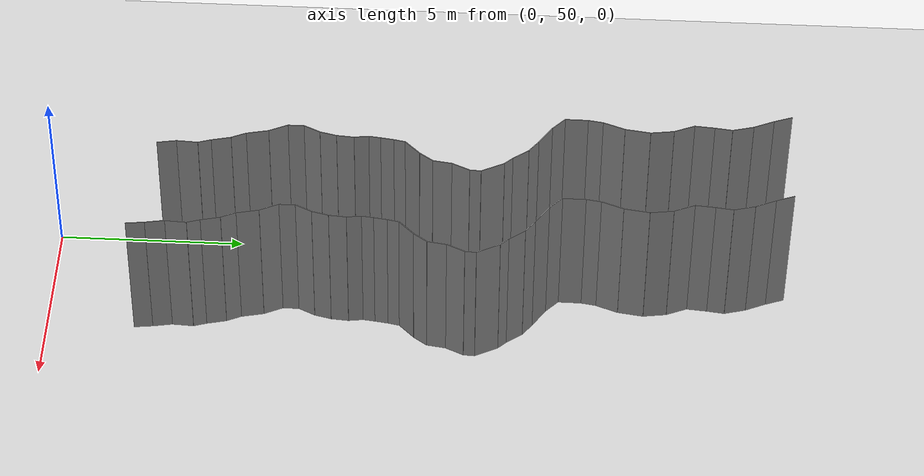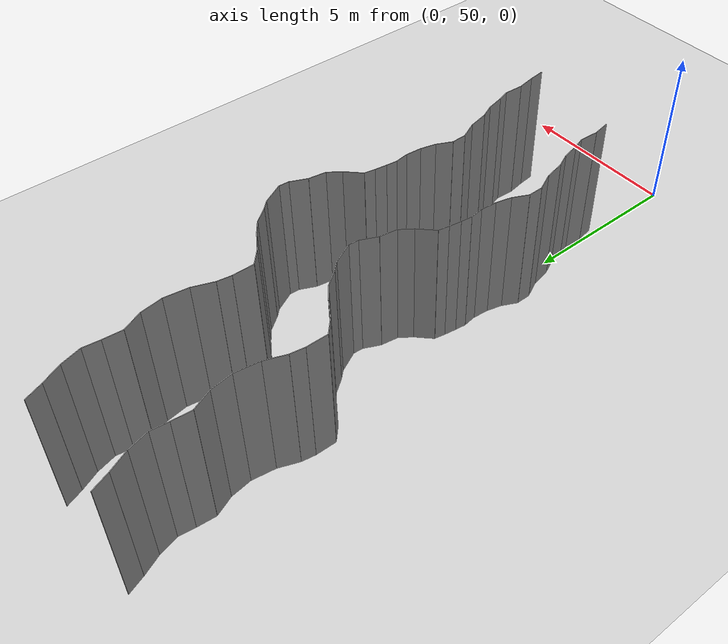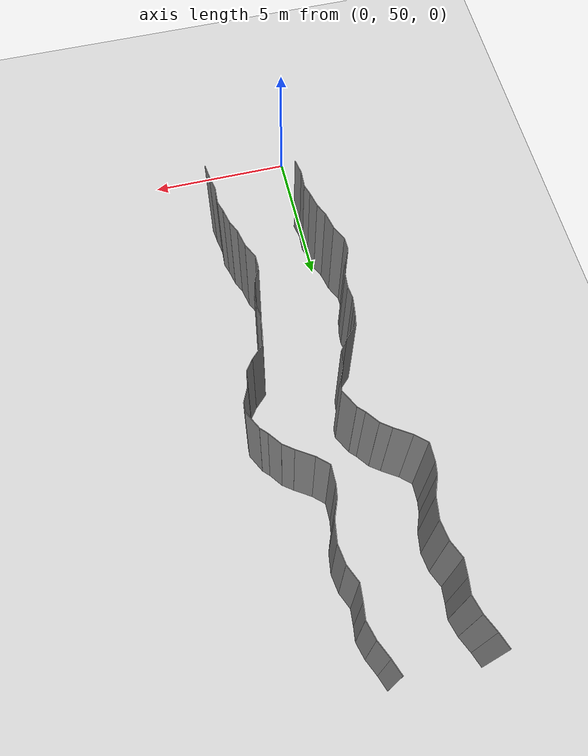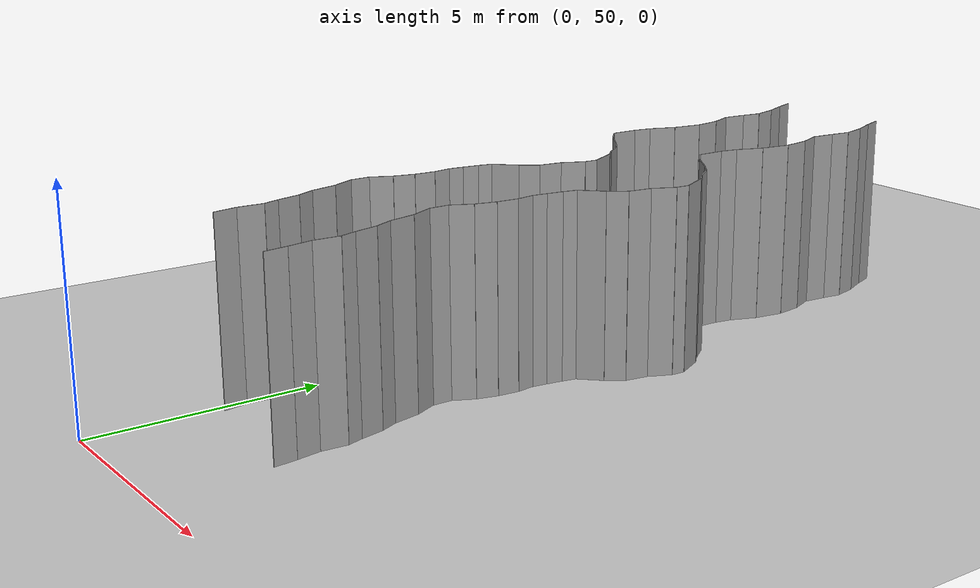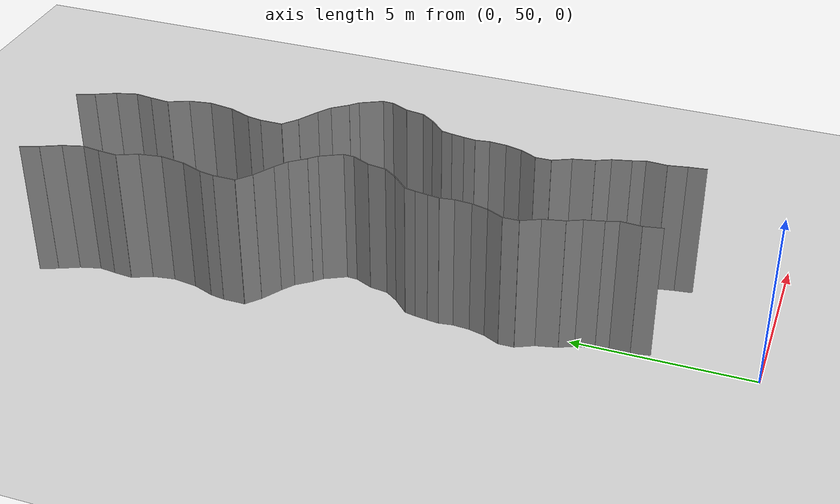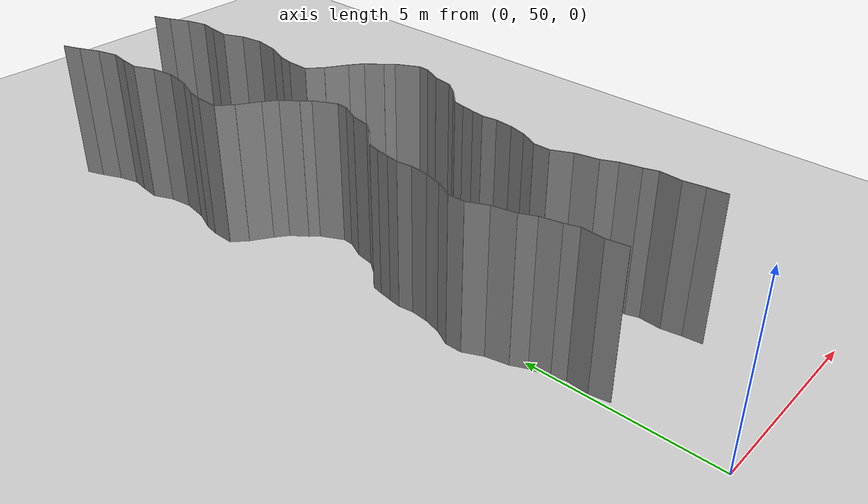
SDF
<sdf version="1.6">
 <world name="default">
  <model name="ground_plane">
   <static>1</static>
   <link name="link">
    <collision name="collision">
     <geometry><plane><normal>0 0 1</normal><size>200 200</size></plane></geometry>
     <surface><friction><ode><mu>100</mu><mu2>50</mu2></ode></friction></surface>
    </collision>
    <visual name="visual">
     <cast_shadows>0</cast_shadows>
     <geometry><plane><normal>0 0 1</normal><size>200 200</size></plane></geometry>
     <material>
      <script><uri>file://media/materials/scripts/gazebo.material</uri><name>Gazebo/Grey</name></script>
     </material>
    </visual>
   </link>
   <pose>0 100 0 0 -0 0</pose>
  </model>
  <model name="wall_225">
   <static>1</static>
   <pose>3.2113889457485594 52.61183467587801 2 0 0 0.12217053225427776</pose>
   <link name="link">
    <collision name="collision"><geometry><box><size>0.02 0.504055038883 4</size></box></geometry></collision>
    <visual name="visual">
     <material>
      <script><name>Gazebo/Grey</name><uri>file://media/materials/scripts/gazebo.material</uri></script>
     </material>
     <geometry><box><size>0.02 0.504055038883 4</size></box></geometry>
    </visual>
   </link>
  </model>
  <model name="wall_226">
   <static>1</static>
   <pose>0.13419193776074015 53.123349293908355 2 0 0 0.17600717748907255</pose>
   <link name="link">
    <collision name="collision"><geometry><box><size>0.02 0.530933757106 4</size></box></geometry></collision>
    <visual name="visual">
     <material>
      <script><name>Gazebo/Grey</name><uri>file://media/materials/scripts/gazebo.material</uri></script>
     </material>
     <geometry><box><size>0.02 0.530933757106 4</size></box></geometry>
    </visual>
   </link>
  </model>
  <model name="wall_227">
   <static>1</static>
   <pose>3.13419193776074 53.123349293908355 2 0 0 0.17600717748907255</pose>
   <link name="link">
    <collision name="collision"><geometry><box><size>0.02 0.530933757106 4</size></box></geometry></collision>
    <visual name="visual">
     <material>
      <script><name>Gazebo/Grey</name><uri>file://media/materials/scripts/gazebo.material</uri></script>
     </material>
     <geometry><box><size>0.02 0.530933757106 4</size></box></geometry>
    </visual>
   </link>
  </model>
  <model name="wall_228">
   <static>1</static>
   <pose>0.1033525726091985 53.67219844196228 2 0 0 -0.054362866140909724</pose>
   <link name="link">
    <collision name="collision"><geometry><box><size>0.02 0.575817757311 4</size></box></geometry></collision>
    <visual name="visual">
     <material>
      <script><name>Gazebo/Grey</name><uri>file://media/materials/scripts/gazebo.material</uri></script>
     </material>
     <geometry><box><size>0.02 0.575817757311 4</size></box></geometry>
    </visual>
   </link>
  </model>
  <model name="wall_229">
   <static>1</static>
   <pose>3.1033525726091984 53.67219844196228 2 0 0 -0.054362866140909724</pose>
   <link name="link">
    <collision name="collision"><geometry><box><size>0.02 0.575817757311 4</size></box></geometry></collision>
    <visual name="visual">
     <material>
      <script><name>Gazebo/Grey</name><uri>file://media/materials/scripts/gazebo.material</uri></script>
     </material>
     <geometry><box><size>0.02 0.575817757311 4</size></box></geometry>
    </visual>
   </link>
  </model>
  <model name="wall_230">
   <static>1</static>
   <pose>0.06323325551721799 54.133449293989024 2 0 0 0.3105255711628101</pose>
   <link name="link">
    <collision name="collision"><geometry><box><size>0.02 0.364990984715 4</size></box></geometry></collision>
    <visual name="visual">
     <material>
      <script><name>Gazebo/Grey</name><uri>file://media/materials/scripts/gazebo.material</uri></script>
     </material>
     <geometry><box><size>0.02 0.364990984715 4</size></box></geometry>
    </visual>
   </link>
  </model>
  <model name="wall_231">
   <static>1</static>
   <pose>3.063233255517218 54.133449293989024 2 0 0 0.3105255711628101</pose>
   <link name="link">
    <collision name="collision"><geometry><box><size>0.02 0.364990984715 4</size></box></geometry></collision>
    <visual name="visual">
     <material>
      <script><name>Gazebo/Grey</name><uri>file://media/materials/scripts/gazebo.material</uri></script>
     </material>
     <geometry><box><size>0.02 0.364990984715 4</size></box></geometry>
    </visual>
   </link>
  </model>
  <model name="wall_232">
   <static>1</static>
   <pose>-0.05407325870135795 54.56925608797085 2 0 0 0.23068202417243394</pose>
   <link name="link">
    <collision name="collision"><geometry><box><size>0.02 0.538339226283 4</size></box></geometry></collision>
    <visual name="visual">
     <material>
      <script><name>Gazebo/Grey</name><uri>file://media/materials/scripts/gazebo.material</uri></script>
     </material>
     <geometry><box><size>0.02 0.538339226283 4</size></box></geometry>
    </visual>
   </link>
  </model>
  <model name="wall_233">
   <static>1</static>
   <pose>2.945926741298642 54.56925608797085 2 0 0 0.23068202417243394</pose>
   <link name="link">
    <collision name="collision"><geometry><box><size>0.02 0.538339226283 4</size></box></geometry></collision>
    <visual name="visual">
     <material>
      <script><name>Gazebo/Grey</name><uri>file://media/materials/scripts/gazebo.material</uri></script>
     </material>
     <geometry><box><size>0.02 0.538339226283 4</size></box></geometry>
    </visual>
   </link>
  </model>
  <model name="wall_234">
   <static>1</static>
   <pose>-0.20672745649517255 55.026170337713495 2 0 0 0.4373402873501568</pose>
   <link name="link">
    <collision name="collision"><geometry><box><size>0.02 0.430243449625 4</size></box></geometry></collision>
    <visual name="visual">
     <material>
      <script><name>Gazebo/Grey</name><uri>file://media/materials/scripts/gazebo.material</uri></script>
     </material>
     <geometry><box><size>0.02 0.430243449625 4</size></box></geometry>
    </visual>
   </link>
  </model>
  <model name="wall_235">
   <static>1</static>
   <pose>2.7932725435048273 55.026170337713495 2 0 0 0.4373402873501568</pose>
   <link name="link">
    <collision name="collision"><geometry><box><size>0.02 0.430243449625 4</size></box></geometry></collision>
    <visual name="visual">
     <material>
      <script><name>Gazebo/Grey</name><uri>file://media/materials/scripts/gazebo.material</uri></script>
     </material>
     <geometry><box><size>0.02 0.430243449625 4</size></box></geometry>
    </visual>
   </link>
  </model>
  <model name="wall_236">
   <static>1</static>
   <pose>-0.3642991000817114 55.51969628307534 2 0 0 0.21896844214872932</pose>
   <link name="link">
    <collision name="collision"><geometry><box><size>0.02 0.6119136238 4</size></box></geometry></collision>
    <visual name="visual">
     <material>
      <script><name>Gazebo/Grey</name><uri>file://media/materials/scripts/gazebo.material</uri></script>
     </material>
     <geometry><box><size>0.02 0.6119136238 4</size></box></geometry>
    </visual>
   </link>
  </model>
  <model name="wall_237">
   <static>1</static>
   <pose>2.6357008999182887 55.51969628307534 2 0 0 0.21896844214872932</pose>
   <link name="link">
    <collision name="collision"><geometry><box><size>0.02 0.6119136238 4</size></box></geometry></collision>
    <visual name="visual">
     <material>
      <script><name>Gazebo/Grey</name><uri>file://media/materials/scripts/gazebo.material</uri></script>
     </material>
     <geometry><box><size>0.02 0.6119136238 4</size></box></geometry>
    </visual>
   </link>
  </model>
  <model name="wall_238">
   <static>1</static>
   <pose>-0.5504548928587892 56.06775959690807 2 0 0 0.4474455903935619</pose>
   <link name="link">
    <collision name="collision"><geometry><box><size>0.02 0.553293048265 4</size></box></geometry></collision>
    <visual name="visual">
     <material>
      <script><name>Gazebo/Grey</name><uri>file://media/materials/scripts/gazebo.material</uri></script>
     </material>
     <geometry><box><size>0.02 0.553293048265 4</size></box></geometry>
    </visual>
   </link>
  </model>
  <model name="wall_239">
   <static>1</static>
   <pose>2.4495451071412107 56.06775959690807 2 0 0 0.4474455903935619</pose>
   <link name="link">
    <collision name="collision"><geometry><box><size>0.02 0.553293048265 4</size></box></geometry></collision>
    <visual name="visual">
     <material>
      <script><name>Gazebo/Grey</name><uri>file://media/materials/scripts/gazebo.material</uri></script>
     </material>
     <geometry><box><size>0.02 0.553293048265 4</size></box></geometry>
    </visual>
   </link>
  </model>
  <model name="wall_240">
   <static>1</static>
   <pose>-0.6722726135977007 56.535992158001456 2 0 0 0.00970046759818442</pose>
   <link name="link">
    <collision name="collision"><geometry><box><size>0.02 0.437661464898 4</size></box></geometry></collision>
    <visual name="visual">
     <material>
      <script><name>Gazebo/Grey</name><uri>file://media/materials/scripts/gazebo.material</uri></script>
     </material>
     <geometry><box><size>0.02 0.437661464898 4</size></box></geometry>
    </visual>
   </link>
  </model>
  <model name="wall_241">
   <static>1</static>
   <pose>2.3277273864022994 56.535992158001456 2 0 0 0.00970046759818442</pose>
   <link name="link">
    <collision name="collision"><geometry><box><size>0.02 0.437661464898 4</size></box></geometry></collision>
    <visual name="visual">
     <material>
      <script><name>Gazebo/Grey</name><uri>file://media/materials/scripts/gazebo.material</uri></script>
     </material>
     <geometry><box><size>0.02 0.437661464898 4</size></box></geometry>
    </visual>
   </link>
  </model>
  <model name="wall_242">
   <static>1</static>
   <pose>-0.5644370674138108 56.9781358897543 2 0 0 -0.4575270984795258</pose>
   <link name="link">
    <collision name="collision"><geometry><box><size>0.02 0.497851849488 4</size></box></geometry></collision>
    <visual name="visual">
     <material>
      <script><name>Gazebo/Grey</name><uri>file://media/materials/scripts/gazebo.material</uri></script>
     </material>
     <geometry><box><size>0.02 0.497851849488 4</size></box></geometry>
    </visual>
   </link>
  </model>
  <model name="wall_243">
   <static>1</static>
   <pose>2.435562932586189 56.9781358897543 2 0 0 -0.4575270984795258</pose>
   <link name="link">
    <collision name="collision"><geometry><box><size>0.02 0.497851849488 4</size></box></geometry></collision>
    <visual name="visual">
     <material>
      <script><name>Gazebo/Grey</name><uri>file://media/materials/scripts/gazebo.material</uri></script>
     </material>
     <geometry><box><size>0.02 0.497851849488 4</size></box></geometry>
    </visual>
   </link>
  </model>
  <model name="wall_244">
   <static>1</static>
   <pose>-0.3977409278205137 57.42771597385954 2 0 0 -0.24570095594294325</pose>
   <link name="link">
    <collision name="collision"><geometry><box><size>0.02 0.46652468332 4</size></box></geometry></collision>
    <visual name="visual">
     <material>
      <script><name>Gazebo/Grey</name><uri>file://media/materials/scripts/gazebo.material</uri></script>
     </material>
     <geometry><box><size>0.02 0.46652468332 4</size></box></geometry>
    </visual>
   </link>
  </model>
  <model name="wall_245">
   <static>1</static>
   <pose>2.6022590721794865 57.42771597385954 2 0 0 -0.24570095594294325</pose>
   <link name="link">
    <collision name="collision"><geometry><box><size>0.02 0.46652468332 4</size></box></geometry></collision>
    <visual name="visual">
     <material>
      <script><name>Gazebo/Grey</name><uri>file://media/materials/scripts/gazebo.material</uri></script>
     </material>
     <geometry><box><size>0.02 0.46652468332 4</size></box></geometry>
    </visual>
   </link>
  </model>
  <model name="wall_246">
   <static>1</static>
   <pose>-0.322147511353633 57.88909450104144 2 0 0 -0.08002358375579467</pose>
   <link name="link">
    <collision name="collision"><geometry><box><size>0.02 0.471753170799 4</size></box></geometry></collision>
    <visual name="visual">
     <material>
      <script><name>Gazebo/Grey</name><uri>file://media/materials/scripts/gazebo.material</uri></script>
     </material>
     <geometry><box><size>0.02 0.471753170799 4</size></box></geometry>
    </visual>
   </link>
  </model>
  <model name="wall_247">
   <static>1</static>
   <pose>2.677852488646367 57.88909450104144 2 0 0 -0.08002358375579467</pose>
   <link name="link">
    <collision name="collision"><geometry><box><size>0.02 0.471753170799 4</size></box></geometry></collision>
    <visual name="visual">
     <material>
      <script><name>Gazebo/Grey</name><uri>file://media/materials/scripts/gazebo.material</uri></script>
     </material>
     <geometry><box><size>0.02 0.471753170799 4</size></box></geometry>
    </visual>
   </link>
  </model>
  <model name="wall_248">
   <static>1</static>
   <pose>-0.3310433767730068 58.32079206656085 2 0 0 0.1402472859164162</pose>
   <link name="link">
    <collision name="collision"><geometry><box><size>0.02 0.397050107474 4</size></box></geometry></collision>
    <visual name="visual">
     <material>
      <script><name>Gazebo/Grey</name><uri>file://media/materials/scripts/gazebo.material</uri></script>
     </material>
     <geometry><box><size>0.02 0.397050107474 4</size></box></geometry>
    </visual>
   </link>
  </model>
  <model name="wall_249">
   <static>1</static>
   <pose>2.6689566232269932 58.32079206656085 2 0 0 0.1402472859164162</pose>
   <link name="link">
    <collision name="collision"><geometry><box><size>0.02 0.397050107474 4</size></box></geometry></collision>
    <visual name="visual">
     <material>
      <script><name>Gazebo/Grey</name><uri>file://media/materials/scripts/gazebo.material</uri></script>
     </material>
     <geometry><box><size>0.02 0.397050107474 4</size></box></geometry>
    </visual>
   </link>
  </model>
  <model name="wall_250">
   <static>1</static>
   <pose>-0.3385227993278728 58.67923277790748 2 0 0 -0.12459150806347144</pose>
   <link name="link">
    <collision name="collision"><geometry><box><size>0.02 0.326258758525 4</size></box></geometry></collision>
    <visual name="visual">
     <material>
      <script><name>Gazebo/Grey</name><uri>file://media/materials/scripts/gazebo.material</uri></script>
     </material>
     <geometry><box><size>0.02 0.326258758525 4</size></box></geometry>
    </visual>
   </link>
  </model>
  <model name="wall_251">
   <static>1</static>
   <pose>2.661477200672127 58.67923277790748 2 0 0 -0.12459150806347144</pose>
   <link name="link">
    <collision name="collision"><geometry><box><size>0.02 0.326258758525 4</size></box></geometry></collision>
    <visual name="visual">
     <material>
      <script><name>Gazebo/Grey</name><uri>file://media/materials/scripts/gazebo.material</uri></script>
     </material>
     <geometry><box><size>0.02 0.326258758525 4</size></box></geometry>
    </visual>
   </link>
  </model>
  <model name="wall_252">
   <static>1</static>
   <pose>-0.29169990789139266 59.01994537643781 2 0 0 -0.14737893703407412</pose>
   <link name="link">
    <collision name="collision"><geometry><box><size>0.02 0.361615570424 4</size></box></geometry></collision>
    <visual name="visual">
     <material>
      <script><name>Gazebo/Grey</name><uri>file://media/materials/scripts/gazebo.material</uri></script>
     </material>
     <geometry><box><size>0.02 0.361615570424 4</size></box></geometry>
    </visual>
   </link>
  </model>
  <model name="wall_253">
   <static>1</static>
   <pose>2.7083000921086073 59.01994537643781 2 0 0 -0.14737893703407412</pose>
   <link name="link">
    <collision name="collision"><geometry><box><size>0.02 0.361615570424 4</size></box></geometry></collision>
    <visual name="visual">
     <material>
      <script><name>Gazebo/Grey</name><uri>file://media/materials/scripts/gazebo.material</uri></script>
     </material>
     <geometry><box><size>0.02 0.361615570424 4</size></box></geometry>
    </visual>
   </link>
  </model>
  <model name="wall_254">
   <static>1</static>
   <pose>-0.23379094740832873 59.353878997590726 2 0 0 -0.19950813740331558</pose>
   <link name="link">
    <collision name="collision"><geometry><box><size>0.02 0.316448836278 4</size></box></geometry></collision>
    <visual name="visual">
     <material>
      <script><name>Gazebo/Grey</name><uri>file://media/materials/scripts/gazebo.material</uri></script>
     </material>
     <geometry><box><size>0.02 0.316448836278 4</size></box></geometry>
    </visual>
   </link>
  </model>
  <model name="wall_255">
   <static>1</static>
   <pose>2.7662090525916714 59.353878997590726 2 0 0 -0.19950813740331558</pose>
   <link name="link">
    <collision name="collision"><geometry><box><size>0.02 0.316448836278 4</size></box></geometry></collision>
    <visual name="visual">
     <material>
      <script><name>Gazebo/Grey</name><uri>file://media/materials/scripts/gazebo.material</uri></script>
     </material>
     <geometry><box><size>0.02 0.316448836278 4</size></box></geometry>
    </visual>
   </link>
  </model>
  <model name="wall_256">
   <static>1</static>
   <pose>0.006760058711881123 59.715176749311794 2 0 0 -0.7925744113131469</pose>
   <link name="link">
    <collision name="collision"><geometry><box><size>0.02 0.587486213896 4</size></box></geometry></collision>
    <visual name="visual">
     <material>
      <script><name>Gazebo/Grey</name><uri>file://media/materials/scripts/gazebo.material</uri></script>
     </material>
     <geometry><box><size>0.02 0.587486213896 4</size></box></geometry>
    </visual>
   </link>
  </model>
  <model name="wall_257">
   <static>1</static>
   <pose>3.006760058711881 59.715176749311794 2 0 0 -0.7925744113131469</pose>
   <link name="link">
    <collision name="collision"><geometry><box><size>0.02 0.587486213896 4</size></box></geometry></collision>
    <visual name="visual">
     <material>
      <script><name>Gazebo/Grey</name><uri>file://media/materials/scripts/gazebo.material</uri></script>
     </material>
     <geometry><box><size>0.02 0.587486213896 4</size></box></geometry>
    </visual>
   </link>
  </model>
  <model name="wall_258">
   <static>1</static>
   <pose>0.3468102283500877 60.10212366769798 2 0 0 -0.6266706802659173</pose>
   <link name="link">
    <collision name="collision"><geometry><box><size>0.02 0.446267992213 4</size></box></geometry></collision>
    <visual name="visual">
     <material>
      <script><name>Gazebo/Grey</name><uri>file://media/materials/scripts/gazebo.material</uri></script>
     </material>
     <geometry><box><size>0.02 0.446267992213 4</size></box></geometry>
    </visual>
   </link>
  </model>
  <model name="wall_259">
   <static>1</static>
   <pose>3.346810228350088 60.10212366769798 2 0 0 -0.6266706802659173</pose>
   <link name="link">
    <collision name="collision"><geometry><box><size>0.02 0.446267992213 4</size></box></geometry></collision>
    <visual name="visual">
     <material>
      <script><name>Gazebo/Grey</name><uri>file://media/materials/scripts/gazebo.material</uri></script>
     </material>
     <geometry><box><size>0.02 0.446267992213 4</size></box></geometry>
    </visual>
   </link>
  </model>
  <model name="wall_260">
   <static>1</static>
   <pose>0.516419443316122 60.539265953137864 2 0 0 -0.149999349596927</pose>
   <link name="link">
    <collision name="collision"><geometry><box><size>0.02 0.518638120912 4</size></box></geometry></collision>
    <visual name="visual">
     <material>
      <script><name>Gazebo/Grey</name><uri>file://media/materials/scripts/gazebo.material</uri></script>
     </material>
     <geometry><box><size>0.02 0.518638120912 4</size></box></geometry>
    </visual>
   </link>
  </model>
  <model name="wall_261">
   <static>1</static>
   <pose>3.516419443316122 60.539265953137864 2 0 0 -0.149999349596927</pose>
   <link name="link">
    <collision name="collision"><geometry><box><size>0.02 0.518638120912 4</size></box></geometry></collision>
    <visual name="visual">
     <material>
      <script><name>Gazebo/Grey</name><uri>file://media/materials/scripts/gazebo.material</uri></script>
     </material>
     <geometry><box><size>0.02 0.518638120912 4</size></box></geometry>
    </visual>
   </link>
  </model>
  <model name="wall_262">
   <static>1</static>
   <pose>0.6673920055958391 61.03784259502857 2 0 0 -0.43393880403713875</pose>
   <link name="link">
    <collision name="collision"><geometry><box><size>0.02 0.533814535943 4</size></box></geometry></collision>
    <visual name="visual">
     <material>
      <script><name>Gazebo/Grey</name><uri>file://media/materials/scripts/gazebo.material</uri></script>
     </material>
     <geometry><box><size>0.02 0.533814535943 4</size></box></geometry>
    </visual>
   </link>
  </model>
  <model name="wall_263">
   <static>1</static>
   <pose>3.667392005595839 61.03784259502857 2 0 0 -0.43393880403713875</pose>
   <link name="link">
    <collision name="collision"><geometry><box><size>0.02 0.533814535943 4</size></box></geometry></collision>
    <visual name="visual">
     <material>
      <script><name>Gazebo/Grey</name><uri>file://media/materials/scripts/gazebo.material</uri></script>
     </material>
     <geometry><box><size>0.02 0.533814535943 4</size></box></geometry>
    </visual>
   </link>
  </model>
  <model name="wall_264">
   <static>1</static>
   <pose>0.7888431503581917 61.429783801356116 2 0 0 -0.06155306130239433</pose>
   <link name="link">
    <collision name="collision"><geometry><box><size>0.02 0.300111902566 4</size></box></geometry></collision>
    <visual name="visual">
     <material>
      <script><name>Gazebo/Grey</name><uri>file://media/materials/scripts/gazebo.material</uri></script>
     </material>
     <geometry><box><size>0.02 0.300111902566 4</size></box></geometry>
    </visual>
   </link>
  </model>
  <model name="wall_265">
   <static>1</static>
   <pose>3.7888431503581916 61.429783801356116 2 0 0 -0.06155306130239433</pose>
   <link name="link">
    <collision name="collision"><geometry><box><size>0.02 0.300111902566 4</size></box></geometry></collision>
    <visual name="visual">
     <material>
      <script><name>Gazebo/Grey</name><uri>file://media/materials/scripts/gazebo.material</uri></script>
     </material>
     <geometry><box><size>0.02 0.300111902566 4</size></box></geometry>
    </visual>
   </link>
  </model>
  <model name="wall_266">
   <static>1</static>
   <pose>0.6422099126613255 61.88304653981725 2 0 0 0.4744444670568768</pose>
   <link name="link">
    <collision name="collision"><geometry><box><size>0.02 0.68234973749 4</size></box></geometry></collision>
    <visual name="visual">
     <material>
      <script><name>Gazebo/Grey</name><uri>file://media/materials/scripts/gazebo.material</uri></script>
     </material>
     <geometry><box><size>0.02 0.68234973749 4</size></box></geometry>
    </visual>
   </link>
  </model>
  <model name="wall_267">
   <static>1</static>
   <pose>3.6422099126613254 61.88304653981725 2 0 0 0.4744444670568768</pose>
   <link name="link">
    <collision name="collision"><geometry><box><size>0.02 0.68234973749 4</size></box></geometry></collision>
    <visual name="visual">
     <material>
      <script><name>Gazebo/Grey</name><uri>file://media/materials/scripts/gazebo.material</uri></script>
     </material>
     <geometry><box><size>0.02 0.68234973749 4</size></box></geometry>
    </visual>
   </link>
  </model>
  <model name="wall_268">
   <static>1</static>
   <pose>0.3820562547864246 62.294445583616444 2 0 0 0.7683485957678714</pose>
   <link name="link">
    <collision name="collision"><geometry><box><size>0.02 0.300136812887 4</size></box></geometry></collision>
    <visual name="visual">
     <material>
      <script><name>Gazebo/Grey</name><uri>file://media/materials/scripts/gazebo.material</uri></script>
     </material>
     <geometry><box><size>0.02 0.300136812887 4</size></box></geometry>
    </visual>
   </link>
  </model>
  <model name="wall_269">
   <static>1</static>
   <pose>3.3820562547864244 62.294445583616444 2 0 0 0.7683485957678714</pose>
   <link name="link">
    <collision name="collision"><geometry><box><size>0.02 0.300136812887 4</size></box></geometry></collision>
    <visual name="visual">
     <material>
      <script><name>Gazebo/Grey</name><uri>file://media/materials/scripts/gazebo.material</uri></script>
     </material>
     <geometry><box><size>0.02 0.300136812887 4</size></box></geometry>
    </visual>
   </link>
  </model>
  <model name="wall_270">
   <static>1</static>
   <pose>0.11918641607961067 62.61202225438212 2 0 0 0.6475441002609261</pose>
   <link name="link">
    <collision name="collision"><geometry><box><size>0.02 0.525770027638 4</size></box></geometry></collision>
    <visual name="visual">
     <material>
      <script><name>Gazebo/Grey</name><uri>file://media/materials/scripts/gazebo.material</uri></script>
     </material>
     <geometry><box><size>0.02 0.525770027638 4</size></box></geometry>
    </visual>
   </link>
  </model>
  <model name="wall_271">
   <static>1</static>
   <pose>3.119186416079611 62.61202225438212 2 0 0 0.6475441002609261</pose>
   <link name="link">
    <collision name="collision"><geometry><box><size>0.02 0.525770027638 4</size></box></geometry></collision>
    <visual name="visual">
     <material>
      <script><name>Gazebo/Grey</name><uri>file://media/materials/scripts/gazebo.material</uri></script>
     </material>
     <geometry><box><size>0.02 0.525770027638 4</size></box></geometry>
    </visual>
   </link>
  </model>
  <model name="wall_272">
   <static>1</static>
   <pose>-0.20928266582730215 62.94833427238674 2 0 0 0.9302150747462545</pose>
   <link name="link">
    <collision name="collision"><geometry><box><size>0.02 0.423796468023 4</size></box></geometry></collision>
    <visual name="visual">
     <material>
      <script><name>Gazebo/Grey</name><uri>file://media/materials/scripts/gazebo.material</uri></script>
     </material>
     <geometry><box><size>0.02 0.423796468023 4</size></box></geometry>
    </visual>
   </link>
  </model>
  <model name="wall_273">
   <static>1</static>
   <pose>2.790717334172698 62.94833427238674 2 0 0 0.9302150747462545</pose>
   <link name="link">
    <collision name="collision"><geometry><box><size>0.02 0.423796468023 4</size></box></geometry></collision>
    <visual name="visual">
     <material>
      <script><name>Gazebo/Grey</name><uri>file://media/materials/scripts/gazebo.material</uri></script>
     </material>
     <geometry><box><size>0.02 0.423796468023 4</size></box></geometry>
    </visual>
   </link>
  </model>
  <model name="wall_274">
   <static>1</static>
   <pose>-0.6520263496914642 63.25009196587217 2 0 0 1.0002171188172309</pose>
   <link name="link">
    <collision name="collision"><geometry><box><size>0.02 0.648427741901 4</size></box></geometry></collision>
    <visual name="visual">
     <material>
      <script><name>Gazebo/Grey</name><uri>file://media/materials/scripts/gazebo.material</uri></script>
     </material>
     <geometry><box><size>0.02 0.648427741901 4</size></box></geometry>
    </visual>
   </link>
  </model>
  <model name="wall_275">
   <static>1</static>
   <pose>2.3479736503085356 63.25009196587217 2 0 0 1.0002171188172309</pose>
   <link name="link">
    <collision name="collision"><geometry><box><size>0.02 0.648427741901 4</size></box></geometry></collision>
    <visual name="visual">
     <material>
      <script><name>Gazebo/Grey</name><uri>file://media/materials/scripts/gazebo.material</uri></script>
     </material>
     <geometry><box><size>0.02 0.648427741901 4</size></box></geometry>
    </visual>
   </link>
  </model>
  <model name="wall_276">
   <static>1</static>
   <pose>-1.1105556793656641 63.59468450559285 2 0 0 0.8309707679736716</pose>
   <link name="link">
    <collision name="collision"><geometry><box><size>0.02 0.502784223796 4</size></box></geometry></collision>
    <visual name="visual">
     <material>
      <script><name>Gazebo/Grey</name><uri>file://media/materials/scripts/gazebo.material</uri></script>
     </material>
     <geometry><box><size>0.02 0.502784223796 4</size></box></geometry>
    </visual>
   </link>
  </model>
  <model name="wall_277">
   <static>1</static>
   <pose>1.8894443206343359 63.59468450559285 2 0 0 0.8309707679736716</pose>
   <link name="link">
    <collision name="collision"><geometry><box><size>0.02 0.502784223796 4</size></box></geometry></collision>
    <visual name="visual">
     <material>
      <script><name>Gazebo/Grey</name><uri>file://media/materials/scripts/gazebo.material</uri></script>
     </material>
     <geometry><box><size>0.02 0.502784223796 4</size></box></geometry>
    </visual>
   </link>
  </model>
  <model name="wall_278">
   <static>1</static>
   <pose>-1.293792026151947 64.07632141838513 2 0 0 -0.00781122382205894</pose>
   <link name="link">
    <collision name="collision"><geometry><box><size>0.02 0.624336321716 4</size></box></geometry></collision>
    <visual name="visual">
     <material>
      <script><name>Gazebo/Grey</name><uri>file://media/materials/scripts/gazebo.material</uri></script>
     </material>
     <geometry><box><size>0.02 0.624336321716 4</size></box></geometry>
    </visual>
   </link>
  </model>
  <model name="wall_279">
   <static>1</static>
   <pose>1.706207973848053 64.07632141838513 2 0 0 -0.00781122382205894</pose>
   <link name="link">
    <collision name="collision"><geometry><box><size>0.02 0.624336321716 4</size></box></geometry></collision>
    <visual name="visual">
     <material>
      <script><name>Gazebo/Grey</name><uri>file://media/materials/scripts/gazebo.material</uri></script>
     </material>
     <geometry><box><size>0.02 0.624336321716 4</size></box></geometry>
    </visual>
   </link>
  </model>
  <model name="wall_280">
   <static>1</static>
   <pose>-1.2571906718658885 64.59144502393012 2 0 0 -0.16675641567433</pose>
   <link name="link">
    <collision name="collision"><geometry><box><size>0.02 0.411640067936 4</size></box></geometry></collision>
    <visual name="visual">
     <material>
      <script><name>Gazebo/Grey</name><uri>file://media/materials/scripts/gazebo.material</uri></script>
     </material>
     <geometry><box><size>0.02 0.411640067936 4</size></box></geometry>
    </visual>
   </link>
  </model>
  <model name="wall_281">
   <static>1</static>
   <pose>1.7428093281341115 64.59144502393012 2 0 0 -0.16675641567433</pose>
   <link name="link">
    <collision name="collision"><geometry><box><size>0.02 0.411640067936 4</size></box></geometry></collision>
    <visual name="visual">
     <material>
      <script><name>Gazebo/Grey</name><uri>file://media/materials/scripts/gazebo.material</uri></script>
     </material>
     <geometry><box><size>0.02 0.411640067936 4</size></box></geometry>
    </visual>
   </link>
  </model>
  <model name="wall_282">
   <static>1</static>
   <pose>-1.1095456275776838 65.08905385000418 2 0 0 -0.36763946817864684</pose>
   <link name="link">
    <collision name="collision"><geometry><box><size>0.02 0.631484554457 4</size></box></geometry></collision>
    <visual name="visual">
     <material>
      <script><name>Gazebo/Grey</name><uri>file://media/materials/scripts/gazebo.material</uri></script>
     </material>
     <geometry><box><size>0.02 0.631484554457 4</size></box></geometry>
    </visual>
   </link>
  </model>
  <model name="wall_283">
   <static>1</static>
   <pose>1.8904543724223162 65.08905385000418 2 0 0 -0.36763946817864684</pose>
   <link name="link">
    <collision name="collision"><geometry><box><size>0.02 0.631484554457 4</size></box></geometry></collision>
    <visual name="visual">
     <material>
      <script><name>Gazebo/Grey</name><uri>file://media/materials/scripts/gazebo.material</uri></script>
     </material>
     <geometry><box><size>0.02 0.631484554457 4</size></box></geometry>
    </visual>
   </link>
  </model>
  <model name="wall_284">
   <static>1</static>
   <pose>-0.9448817441523526 65.72776900940066 2 0 0 -0.1476706330301692</pose>
   <link name="link">
    <collision name="collision"><geometry><box><size>0.02 0.695714416796 4</size></box></geometry></collision>
    <visual name="visual">
     <material>
      <script><name>Gazebo/Grey</name><uri>file://media/materials/scripts/gazebo.material</uri></script>
     </material>
     <geometry><box><size>0.02 0.695714416796 4</size></box></geometry>
    </visual>
   </link>
  </model>
  <model name="wall_285">
   <static>1</static>
   <pose>2.0551182558476473 65.72776900940066 2 0 0 -0.1476706330301692</pose>
   <link name="link">
    <collision name="collision"><geometry><box><size>0.02 0.695714416796 4</size></box></geometry></collision>
    <visual name="visual">
     <material>
      <script><name>Gazebo/Grey</name><uri>file://media/materials/scripts/gazebo.material</uri></script>
     </material>
     <geometry><box><size>0.02 0.695714416796 4</size></box></geometry>
    </visual>
   </link>
  </model>
  <model name="wall_286">
   <static>1</static>
   <pose>-0.9395597018888275 66.38512965560695 2 0 0 0.14534919619626238</pose>
   <link name="link">
    <collision name="collision"><geometry><box><size>0.02 0.63325612881 4</size></box></geometry></collision>
    <visual name="visual">
     <material>
      <script><name>Gazebo/Grey</name><uri>file://media/materials/scripts/gazebo.material</uri></script>
     </material>
     <geometry><box><size>0.02 0.63325612881 4</size></box></geometry>
    </visual>
   </link>
  </model>
  <model name="wall_287">
   <static>1</static>
   <pose>2.0604402981111725 66.38512965560695 2 0 0 0.14534919619626238</pose>
   <link name="link">
    <collision name="collision"><geometry><box><size>0.02 0.63325612881 4</size></box></geometry></collision>
    <visual name="visual">
     <material>
      <script><name>Gazebo/Grey</name><uri>file://media/materials/scripts/gazebo.material</uri></script>
     </material>
     <geometry><box><size>0.02 0.63325612881 4</size></box></geometry>
    </visual>
   </link>
  </model>
  <model name="wall_288">
   <static>1</static>
   <pose>-1.1050653401156803 66.97497776492898 2 0 0 0.4083102331050837</pose>
   <link name="link">
    <collision name="collision"><geometry><box><size>0.02 0.602660389619 4</size></box></geometry></collision>
    <visual name="visual">
     <material>
      <script><name>Gazebo/Grey</name><uri>file://media/materials/scripts/gazebo.material</uri></script>
     </material>
     <geometry><box><size>0.02 0.602660389619 4</size></box></geometry>
    </visual>
   </link>
  </model>
  <model name="wall_289">
   <static>1</static>
   <pose>1.8949346598843197 66.97497776492898 2 0 0 0.4083102331050837</pose>
   <link name="link">
    <collision name="collision"><geometry><box><size>0.02 0.602660389619 4</size></box></geometry></collision>
    <visual name="visual">
     <material>
      <script><name>Gazebo/Grey</name><uri>file://media/materials/scripts/gazebo.material</uri></script>
     </material>
     <geometry><box><size>0.02 0.602660389619 4</size></box></geometry>
    </visual>
   </link>
  </model>
  <model name="wall_290">
   <static>1</static>
   <pose>-1.2008609202168483 67.52343469784513 2 0 0 -0.08749381163624889</pose>
   <link name="link">
    <collision name="collision"><geometry><box><size>0.02 0.545884422335 4</size></box></geometry></collision>
    <visual name="visual">
     <material>
      <script><name>Gazebo/Grey</name><uri>file://media/materials/scripts/gazebo.material</uri></script>
     </material>
     <geometry><box><size>0.02 0.545884422335 4</size></box></geometry>
    </visual>
   </link>
  </model>
  <model name="wall_291">
   <static>1</static>
   <pose>1.7991390797831517 67.52343469784513 2 0 0 -0.08749381163624889</pose>
   <link name="link">
    <collision name="collision"><geometry><box><size>0.02 0.545884422335 4</size></box></geometry></collision>
    <visual name="visual">
     <material>
      <script><name>Gazebo/Grey</name><uri>file://media/materials/scripts/gazebo.material</uri></script>
     </material>
     <geometry><box><size>0.02 0.545884422335 4</size></box></geometry>
    </visual>
   </link>
  </model>
  <model name="wall_292">
   <static>1</static>
   <pose>-1.145790055012505 68.03180087746411 2 0 0 -0.1312694836096956</pose>
   <link name="link">
    <collision name="collision"><geometry><box><size>0.02 0.477040225581 4</size></box></geometry></collision>
    <visual name="visual">
     <material>
      <script><name>Gazebo/Grey</name><uri>file://media/materials/scripts/gazebo.material</uri></script>
     </material>
     <geometry><box><size>0.02 0.477040225581 4</size></box></geometry>
    </visual>
   </link>
  </model>
  <model name="wall_293">
   <static>1</static>
   <pose>1.854209944987495 68.03180087746411 2 0 0 -0.1312694836096956</pose>
   <link name="link">
    <collision name="collision"><geometry><box><size>0.02 0.477040225581 4</size></box></geometry></collision>
    <visual name="visual">
     <material>
      <script><name>Gazebo/Grey</name><uri>file://media/materials/scripts/gazebo.material</uri></script>
     </material>
     <geometry><box><size>0.02 0.477040225581 4</size></box></geometry>
    </visual>
   </link>
  </model>
  <model name="wall_294">
   <static>1</static>
   <pose>-1.191299964802508 68.5531224360757 2 0 0 0.2631228373418589</pose>
   <link name="link">
    <collision name="collision"><geometry><box><size>0.02 0.590013930666 4</size></box></geometry></collision>
    <visual name="visual">
     <material>
      <script><name>Gazebo/Grey</name><uri>file://media/materials/scripts/gazebo.material</uri></script>
     </material>
     <geometry><box><size>0.02 0.590013930666 4</size></box></geometry>
    </visual>
   </link>
  </model>
  <model name="wall_295">
   <static>1</static>
   <pose>1.808700035197492 68.5531224360757 2 0 0 0.2631228373418589</pose>
   <link name="link">
    <collision name="collision"><geometry><box><size>0.02 0.590013930666 4</size></box></geometry></collision>
    <visual name="visual">
     <material>
      <script><name>Gazebo/Grey</name><uri>file://media/materials/scripts/gazebo.material</uri></script>
     </material>
     <geometry><box><size>0.02 0.590013930666 4</size></box></geometry>
    </visual>
   </link>
  </model>
  <model name="wall_296">
   <static>1</static>
   <pose>-1.39144109231835 69.11068695541013 2 0 0 0.4249581776347584</pose>
   <link name="link">
    <collision name="collision"><geometry><box><size>0.02 0.598670068744 4</size></box></geometry></collision>
    <visual name="visual">
     <material>
      <script><name>Gazebo/Grey</name><uri>file://media/materials/scripts/gazebo.material</uri></script>
     </material>
     <geometry><box><size>0.02 0.598670068744 4</size></box></geometry>
    </visual>
   </link>
  </model>
  <model name="wall_297">
   <static>1</static>
   <pose>1.60855890768165 69.11068695541013 2 0 0 0.4249581776347584</pose>
   <link name="link">
    <collision name="collision"><geometry><box><size>0.02 0.598670068744 4</size></box></geometry></collision>
    <visual name="visual">
     <material>
      <script><name>Gazebo/Grey</name><uri>file://media/materials/scripts/gazebo.material</uri></script>
     </material>
     <geometry><box><size>0.02 0.598670068744 4</size></box></geometry>
    </visual>
   </link>
  </model>
  <model name="wall_298">
   <static>1</static>
   <pose>-1.60783676083202 69.63059318099539 2 0 0 0.3597874523173595</pose>
   <link name="link">
    <collision name="collision"><geometry><box><size>0.02 0.528210969396 4</size></box></geometry></collision>
    <visual name="visual">
     <material>
      <script><name>Gazebo/Grey</name><uri>file://media/materials/scripts/gazebo.material</uri></script>
     </material>
     <geometry><box><size>0.02 0.528210969396 4</size></box></geometry>
    </visual>
   </link>
  </model>
  <model name="wall_299">
   <static>1</static>
   <pose>1.39216323916798 69.63059318099539 2 0 0 0.3597874523173595</pose>
   <link name="link">
    <collision name="collision"><geometry><box><size>0.02 0.528210969396 4</size></box></geometry></collision>
    <visual name="visual">
     <material>
      <script><name>Gazebo/Grey</name><uri>file://media/materials/scripts/gazebo.material</uri></script>
     </material>
     <geometry><box><size>0.02 0.528210969396 4</size></box></geometry>
    </visual>
   </link>
  </model>
 </world>
</sdf>
